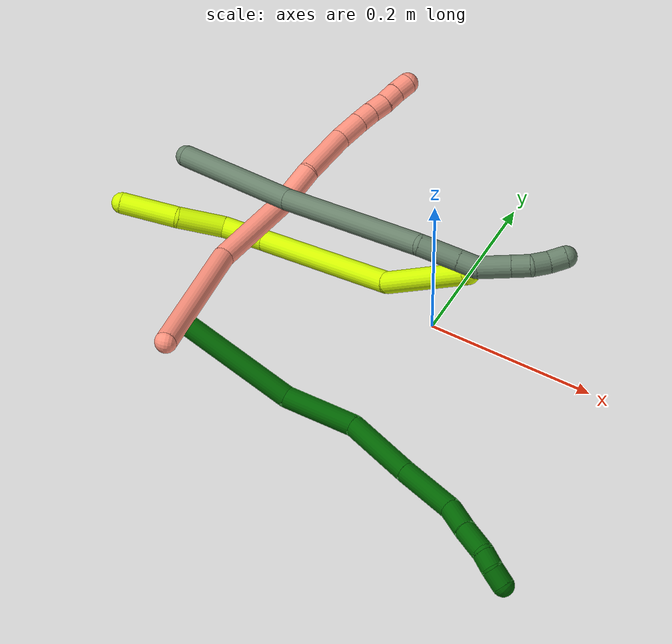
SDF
<sdf version="1.7">
 <world name="default">
  <model name="6">
   <static>0</static>
   <link name="6">
    <collision name="collision-cylinder-e_1_1_4">
     <pose>0.0078 -0.01296 0.06814 0.187953 0.111979 0.010565</pose>
     <geometry><cylinder><radius>0.0125</radius><length>0.139598</length></cylinder></geometry>
     <surface>
      <friction><ode><mu>1.16</mu><mu2>1.16</mu2><slip1>0</slip1><slip2>0</slip2></ode></friction>
      <contact><ode><kp>1e+06</kp><kd>1</kd><max_vel>0</max_vel><min_depth>0.001</min_depth></ode></contact>
     </surface>
    </collision>
    <visual name="visual-cylinder-e_1_1_4">
     <pose>0.0078 -0.01296 0.06814 0.187953 0.111979 0.010565</pose>
     <geometry><cylinder><radius>0.0125</radius><length>0.139598</length></cylinder></geometry>
     <material><ambient>0 0.392157 0.003922 1</ambient></material>
    </visual>
    <collision name="collision-cylinder-e_2_4_5">
     <pose>0.027641 -0.043288 0.17346 0.437014 0.285429 0.063792</pose>
     <geometry><cylinder><radius>0.0125</radius><length>0.085531</length></cylinder></geometry>
     <surface>
      <friction><ode><mu>1.16</mu><mu2>1.16</mu2><slip1>0</slip1><slip2>0</slip2></ode></friction>
      <contact><ode><kp>1e+06</kp><kd>1</kd><max_vel>0</max_vel><min_depth>0.001</min_depth></ode></contact>
     </surface>
    </collision>
    <visual name="visual-cylinder-e_2_4_5">
     <pose>0.027641 -0.043288 0.17346 0.437014 0.285429 0.063792</pose>
     <geometry><cylinder><radius>0.0125</radius><length>0.085531</length></cylinder></geometry>
     <material><ambient>0 0.392157 0.003922 1</ambient></material>
    </visual>
    <collision name="collision-cylinder-e_3_5_6">
     <pose>0.062736 -0.066532 0.247714 0.157191 0.550753 0.0445</pose>
     <geometry><cylinder><radius>0.0125</radius><length>0.088104</length></cylinder></geometry>
     <surface>
      <friction><ode><mu>1.16</mu><mu2>1.16</mu2><slip1>0</slip1><slip2>0</slip2></ode></friction>
      <contact><ode><kp>1e+06</kp><kd>1</kd><max_vel>0</max_vel><min_depth>0.001</min_depth></ode></contact>
     </surface>
    </collision>
    <visual name="visual-cylinder-e_3_5_6">
     <pose>0.062736 -0.066532 0.247714 0.157191 0.550753 0.0445</pose>
     <geometry><cylinder><radius>0.0125</radius><length>0.088104</length></cylinder></geometry>
     <material><ambient>0 0.392157 0.003922 1</ambient></material>
    </visual>
    <collision name="collision-cylinder-e_4_6_7">
     <pose>0.105326 -0.078592 0.314625 0.204374 0.570126 0.060082</pose>
     <geometry><cylinder><radius>0.0125</radius><length>0.07239</length></cylinder></geometry>
     <surface>
      <friction><ode><mu>1.16</mu><mu2>1.16</mu2><slip1>0</slip1><slip2>0</slip2></ode></friction>
      <contact><ode><kp>1e+06</kp><kd>1</kd><max_vel>0</max_vel><min_depth>0.001</min_depth></ode></contact>
     </surface>
    </collision>
    <visual name="visual-cylinder-e_4_6_7">
     <pose>0.105326 -0.078592 0.314625 0.204374 0.570126 0.060082</pose>
     <geometry><cylinder><radius>0.0125</radius><length>0.07239</length></cylinder></geometry>
     <material><ambient>0 0.392157 0.003922 1</ambient></material>
    </visual>
    <collision name="collision-cylinder-e_5_7_8">
     <pose>0.137677 -0.084081 0.357441 -0.053559 0.77831 -0.021967</pose>
     <geometry><cylinder><radius>0.0125</radius><length>0.036508</length></cylinder></geometry>
     <surface>
      <friction><ode><mu>1.16</mu><mu2>1.16</mu2><slip1>0</slip1><slip2>0</slip2></ode></friction>
      <contact><ode><kp>1e+06</kp><kd>1</kd><max_vel>0</max_vel><min_depth>0.001</min_depth></ode></contact>
     </surface>
    </collision>
    <visual name="visual-cylinder-e_5_7_8">
     <pose>0.137677 -0.084081 0.357441 -0.053559 0.77831 -0.021967</pose>
     <geometry><cylinder><radius>0.0125</radius><length>0.036508</length></cylinder></geometry>
     <material><ambient>0 0.392157 0.003922 1</ambient></material>
    </visual>
    <collision name="collision-cylinder-e_6_8_9">
     <pose>0.161973 -0.083451 0.384445 0.004694 0.685999 0.001676</pose>
     <geometry><cylinder><radius>0.0125</radius><length>0.036248</length></cylinder></geometry>
     <surface>
      <friction><ode><mu>1.16</mu><mu2>1.16</mu2><slip1>0</slip1><slip2>0</slip2></ode></friction>
      <contact><ode><kp>1e+06</kp><kd>1</kd><max_vel>0</max_vel><min_depth>0.001</min_depth></ode></contact>
     </surface>
    </collision>
    <visual name="visual-cylinder-e_6_8_9">
     <pose>0.161973 -0.083451 0.384445 0.004694 0.685999 0.001676</pose>
     <geometry><cylinder><radius>0.0125</radius><length>0.036248</length></cylinder></geometry>
     <material><ambient>0 0.392157 0.003922 1</ambient></material>
    </visual>
    <collision name="collision-cylinder-e_7_9_10">
     <pose>0.176751 -0.081425 0.407676 -0.223326 0.335989 -0.038028</pose>
     <geometry><cylinder><radius>0.0125</radius><length>0.020001</length></cylinder></geometry>
     <surface>
      <friction><ode><mu>1.16</mu><mu2>1.16</mu2><slip1>0</slip1><slip2>0</slip2></ode></friction>
      <contact><ode><kp>1e+06</kp><kd>1</kd><max_vel>0</max_vel><min_depth>0.001</min_depth></ode></contact>
     </surface>
    </collision>
    <visual name="visual-cylinder-e_7_9_10">
     <pose>0.176751 -0.081425 0.407676 -0.223326 0.335989 -0.038028</pose>
     <geometry><cylinder><radius>0.0125</radius><length>0.020001</length></cylinder></geometry>
     <material><ambient>0 0.392157 0.003922 1</ambient></material>
    </visual>
    <collision name="collision-cylinder-e_8_10_2">
     <pose>0.180658 -0.077241 0.42747 -0.19519 0.056471 -0.00553</pose>
     <geometry><cylinder><radius>0.0125</radius><length>0.02162</length></cylinder></geometry>
     <surface>
      <friction><ode><mu>1.16</mu><mu2>1.16</mu2><slip1>0</slip1><slip2>0</slip2></ode></friction>
      <contact><ode><kp>1e+06</kp><kd>1</kd><max_vel>0</max_vel><min_depth>0.001</min_depth></ode></contact>
     </surface>
    </collision>
    <visual name="visual-cylinder-e_8_10_2">
     <pose>0.180658 -0.077241 0.42747 -0.19519 0.056471 -0.00553</pose>
     <geometry><cylinder><radius>0.0125</radius><length>0.02162</length></cylinder></geometry>
     <material><ambient>0 0.392157 0.003922 1</ambient></material>
    </visual>
    <collision name="collision-sphere-2">
     <pose>0.181268 -0.075148 0.438058 0 -0 0</pose>
     <geometry><sphere><radius>0.0125</radius></sphere></geometry>
     <surface>
      <friction><ode><mu>1.16</mu><mu2>1.16</mu2><slip1>0</slip1><slip2>0</slip2></ode></friction>
      <contact><ode><kp>1e+06</kp><kd>1</kd><max_vel>0</max_vel><min_depth>0.001</min_depth></ode></contact>
     </surface>
    </collision>
    <visual name="visual-sphere-2">
     <pose>0.181268 -0.075148 0.438058 0 -0 0</pose>
     <geometry><sphere><radius>0.0125</radius></sphere></geometry>
     <material><ambient>0 0.392157 0.003922 1</ambient></material>
    </visual>
    <collision name="collision-sphere-10">
     <pose>0.180048 -0.079334 0.416882 0 -0 0</pose>
     <geometry><sphere><radius>0.0125</radius></sphere></geometry>
     <surface>
      <friction><ode><mu>1.16</mu><mu2>1.16</mu2><slip1>0</slip1><slip2>0</slip2></ode></friction>
      <contact><ode><kp>1e+06</kp><kd>1</kd><max_vel>0</max_vel><min_depth>0.001</min_depth></ode></contact>
     </surface>
    </collision>
    <visual name="visual-sphere-10">
     <pose>0.180048 -0.079334 0.416882 0 -0 0</pose>
     <geometry><sphere><radius>0.0125</radius></sphere></geometry>
     <material><ambient>0 0.392157 0.003922 1</ambient></material>
    </visual>
    <collision name="collision-sphere-9">
     <pose>0.173454 -0.083516 0.398469 0 -0 0</pose>
     <geometry><sphere><radius>0.0125</radius></sphere></geometry>
     <surface>
      <friction><ode><mu>1.16</mu><mu2>1.16</mu2><slip1>0</slip1><slip2>0</slip2></ode></friction>
      <contact><ode><kp>1e+06</kp><kd>1</kd><max_vel>0</max_vel><min_depth>0.001</min_depth></ode></contact>
     </surface>
    </collision>
    <visual name="visual-sphere-9">
     <pose>0.173454 -0.083516 0.398469 0 -0 0</pose>
     <geometry><sphere><radius>0.0125</radius></sphere></geometry>
     <material><ambient>0 0.392157 0.003922 1</ambient></material>
    </visual>
    <collision name="collision-sphere-4">
     <pose>0.015599 -0.02592 0.136281 0 -0 0</pose>
     <geometry><sphere><radius>0.0125</radius></sphere></geometry>
     <surface>
      <friction><ode><mu>1.16</mu><mu2>1.16</mu2><slip1>0</slip1><slip2>0</slip2></ode></friction>
      <contact><ode><kp>1e+06</kp><kd>1</kd><max_vel>0</max_vel><min_depth>0.001</min_depth></ode></contact>
     </surface>
    </collision>
    <visual name="visual-sphere-4">
     <pose>0.015599 -0.02592 0.136281 0 -0 0</pose>
     <geometry><sphere><radius>0.0125</radius></sphere></geometry>
     <material><ambient>0 0.392157 0.003922 1</ambient></material>
    </visual>
    <collision name="collision-sphere-1">
     <geometry><sphere><radius>0.0125</radius></sphere></geometry>
     <surface>
      <friction><ode><mu>1.16</mu><mu2>1.16</mu2><slip1>0</slip1><slip2>0</slip2></ode></friction>
      <contact><ode><kp>1e+06</kp><kd>1</kd><max_vel>0</max_vel><min_depth>0.001</min_depth></ode></contact>
     </surface>
    </collision>
    <visual name="visual-sphere-1">
     <geometry><sphere><radius>0.0125</radius></sphere></geometry>
     <material><ambient>0 0.392157 0.003922 1</ambient></material>
    </visual>
    <collision name="collision-sphere-8">
     <pose>0.150493 -0.083385 0.370421 0 -0 0</pose>
     <geometry><sphere><radius>0.0125</radius></sphere></geometry>
     <surface>
      <friction><ode><mu>1.16</mu><mu2>1.16</mu2><slip1>0</slip1><slip2>0</slip2></ode></friction>
      <contact><ode><kp>1e+06</kp><kd>1</kd><max_vel>0</max_vel><min_depth>0.001</min_depth></ode></contact>
     </surface>
    </collision>
    <visual name="visual-sphere-8">
     <pose>0.150493 -0.083385 0.370421 0 -0 0</pose>
     <geometry><sphere><radius>0.0125</radius></sphere></geometry>
     <material><ambient>0 0.392157 0.003922 1</ambient></material>
    </visual>
    <collision name="collision-sphere-5">
     <pose>0.039682 -0.060656 0.210638 0 -0 0</pose>
     <geometry><sphere><radius>0.0125</radius></sphere></geometry>
     <surface>
      <friction><ode><mu>1.16</mu><mu2>1.16</mu2><slip1>0</slip1><slip2>0</slip2></ode></friction>
      <contact><ode><kp>1e+06</kp><kd>1</kd><max_vel>0</max_vel><min_depth>0.001</min_depth></ode></contact>
     </surface>
    </collision>
    <visual name="visual-sphere-5">
     <pose>0.039682 -0.060656 0.210638 0 -0 0</pose>
     <geometry><sphere><radius>0.0125</radius></sphere></geometry>
     <material><ambient>0 0.392157 0.003922 1</ambient></material>
    </visual>
    <collision name="collision-sphere-6">
     <pose>0.08579 -0.072408 0.284789 0 -0 0</pose>
     <geometry><sphere><radius>0.0125</radius></sphere></geometry>
     <surface>
      <friction><ode><mu>1.16</mu><mu2>1.16</mu2><slip1>0</slip1><slip2>0</slip2></ode></friction>
      <contact><ode><kp>1e+06</kp><kd>1</kd><max_vel>0</max_vel><min_depth>0.001</min_depth></ode></contact>
     </surface>
    </collision>
    <visual name="visual-sphere-6">
     <pose>0.08579 -0.072408 0.284789 0 -0 0</pose>
     <geometry><sphere><radius>0.0125</radius></sphere></geometry>
     <material><ambient>0 0.392157 0.003922 1</ambient></material>
    </visual>
    <collision name="collision-sphere-7">
     <pose>0.124861 -0.084776 0.344461 0 -0 0</pose>
     <geometry><sphere><radius>0.0125</radius></sphere></geometry>
     <surface>
      <friction><ode><mu>1.16</mu><mu2>1.16</mu2><slip1>0</slip1><slip2>0</slip2></ode></friction>
      <contact><ode><kp>1e+06</kp><kd>1</kd><max_vel>0</max_vel><min_depth>0.001</min_depth></ode></contact>
     </surface>
    </collision>
    <visual name="visual-sphere-7">
     <pose>0.124861 -0.084776 0.344461 0 -0 0</pose>
     <geometry><sphere><radius>0.0125</radius></sphere></geometry>
     <material><ambient>0 0.392157 0.003922 1</ambient></material>
    </visual>
    <inertial>
     <pose>0.069887 -0.052911 0.226658 0 -0 0</pose>
     <mass>0.5</mass>
     <inertia><ixx>0.000399</ixx><ixy>0</ixy><ixz>0</ixz><iyy>0.00039</iyy><iyz>0</iyz><izz>1.3e-05</izz></inertia>
    </inertial>
   </link>
   <pose>-0.220424 -0.169494 0.050625 -2.28943 -0.776976 -1.16418</pose>
  </model>
  <model name="15">
   <static>0</static>
   <link name="15">
    <collision name="collision-cylinder-e_1_1_4">
     <pose>0.02935 0.003131 -0.017455 -2.96409 1.02729 -2.82871</pose>
     <geometry><cylinder><radius>0.0125</radius><length>0.068583</length></cylinder></geometry>
     <surface>
      <friction><ode><mu>1.16</mu><mu2>1.16</mu2><slip1>0</slip1><slip2>0</slip2></ode></friction>
      <contact><ode><kp>1e+06</kp><kd>1</kd><max_vel>0</max_vel><min_depth>0.001</min_depth></ode></contact>
     </surface>
    </collision>
    <visual name="visual-cylinder-e_1_1_4">
     <pose>0.02935 0.003131 -0.017455 -2.96409 1.02729 -2.82871</pose>
     <geometry><cylinder><radius>0.0125</radius><length>0.068583</length></cylinder></geometry>
     <material><ambient>0.835294 1 0 1</ambient></material>
    </visual>
    <collision name="collision-cylinder-e_2_4_5">
     <pose>0.076014 0.00831 -0.056264 -3.04602 0.679036 -2.87243</pose>
     <geometry><cylinder><radius>0.0125</radius><length>0.055135</length></cylinder></geometry>
     <surface>
      <friction><ode><mu>1.16</mu><mu2>1.16</mu2><slip1>0</slip1><slip2>0</slip2></ode></friction>
      <contact><ode><kp>1e+06</kp><kd>1</kd><max_vel>0</max_vel><min_depth>0.001</min_depth></ode></contact>
     </surface>
    </collision>
    <visual name="visual-cylinder-e_2_4_5">
     <pose>0.076014 0.00831 -0.056264 -3.04602 0.679036 -2.87243</pose>
     <geometry><cylinder><radius>0.0125</radius><length>0.055135</length></cylinder></geometry>
     <material><ambient>0.835294 1 0 1</ambient></material>
    </visual>
    <collision name="collision-cylinder-e_3_5_6">
     <pose>0.118149 0.011607 -0.088318 -3.02521 1.16136 -2.96448</pose>
     <geometry><cylinder><radius>0.0125</radius><length>0.054116</length></cylinder></geometry>
     <surface>
      <friction><ode><mu>1.16</mu><mu2>1.16</mu2><slip1>0</slip1><slip2>0</slip2></ode></friction>
      <contact><ode><kp>1e+06</kp><kd>1</kd><max_vel>0</max_vel><min_depth>0.001</min_depth></ode></contact>
     </surface>
    </collision>
    <visual name="visual-cylinder-e_3_5_6">
     <pose>0.118149 0.011607 -0.088318 -3.02521 1.16136 -2.96448</pose>
     <geometry><cylinder><radius>0.0125</radius><length>0.054116</length></cylinder></geometry>
     <material><ambient>0.835294 1 0 1</ambient></material>
    </visual>
    <collision name="collision-cylinder-e_4_6_7">
     <pose>0.241477 0.024168 -0.099537 -1.61676 1.45637 -1.50215</pose>
     <geometry><cylinder><radius>0.0125</radius><length>0.19831</length></cylinder></geometry>
     <surface>
      <friction><ode><mu>1.16</mu><mu2>1.16</mu2><slip1>0</slip1><slip2>0</slip2></ode></friction>
      <contact><ode><kp>1e+06</kp><kd>1</kd><max_vel>0</max_vel><min_depth>0.001</min_depth></ode></contact>
     </surface>
    </collision>
    <visual name="visual-cylinder-e_4_6_7">
     <pose>0.241477 0.024168 -0.099537 -1.61676 1.45637 -1.50215</pose>
     <geometry><cylinder><radius>0.0125</radius><length>0.19831</length></cylinder></geometry>
     <material><ambient>0.835294 1 0 1</ambient></material>
    </visual>
    <collision name="collision-cylinder-e_5_7_2">
     <pose>0.396037 0.061746 -0.098309 -1.50436 1.1317 -1.0724</pose>
     <geometry><cylinder><radius>0.0125</radius><length>0.123856</length></cylinder></geometry>
     <surface>
      <friction><ode><mu>1.16</mu><mu2>1.16</mu2><slip1>0</slip1><slip2>0</slip2></ode></friction>
      <contact><ode><kp>1e+06</kp><kd>1</kd><max_vel>0</max_vel><min_depth>0.001</min_depth></ode></contact>
     </surface>
    </collision>
    <visual name="visual-cylinder-e_5_7_2">
     <pose>0.396037 0.061746 -0.098309 -1.50436 1.1317 -1.0724</pose>
     <geometry><cylinder><radius>0.0125</radius><length>0.123856</length></cylinder></geometry>
     <material><ambient>0.835294 1 0 1</ambient></material>
    </visual>
    <collision name="collision-sphere-2">
     <pose>0.45209 0.088015 -0.096561 0 -0 0</pose>
     <geometry><sphere><radius>0.0125</radius></sphere></geometry>
     <surface>
      <friction><ode><mu>1.16</mu><mu2>1.16</mu2><slip1>0</slip1><slip2>0</slip2></ode></friction>
      <contact><ode><kp>1e+06</kp><kd>1</kd><max_vel>0</max_vel><min_depth>0.001</min_depth></ode></contact>
     </surface>
    </collision>
    <visual name="visual-sphere-2">
     <pose>0.45209 0.088015 -0.096561 0 -0 0</pose>
     <geometry><sphere><radius>0.0125</radius></sphere></geometry>
     <material><ambient>0.835294 1 0 1</ambient></material>
    </visual>
    <collision name="collision-sphere-7">
     <pose>0.339983 0.035477 -0.100057 0 -0 0</pose>
     <geometry><sphere><radius>0.0125</radius></sphere></geometry>
     <surface>
      <friction><ode><mu>1.16</mu><mu2>1.16</mu2><slip1>0</slip1><slip2>0</slip2></ode></friction>
      <contact><ode><kp>1e+06</kp><kd>1</kd><max_vel>0</max_vel><min_depth>0.001</min_depth></ode></contact>
     </surface>
    </collision>
    <visual name="visual-sphere-7">
     <pose>0.339983 0.035477 -0.100057 0 -0 0</pose>
     <geometry><sphere><radius>0.0125</radius></sphere></geometry>
     <material><ambient>0.835294 1 0 1</ambient></material>
    </visual>
    <collision name="collision-sphere-6">
     <pose>0.142971 0.012858 -0.099016 0 -0 0</pose>
     <geometry><sphere><radius>0.0125</radius></sphere></geometry>
     <surface>
      <friction><ode><mu>1.16</mu><mu2>1.16</mu2><slip1>0</slip1><slip2>0</slip2></ode></friction>
      <contact><ode><kp>1e+06</kp><kd>1</kd><max_vel>0</max_vel><min_depth>0.001</min_depth></ode></contact>
     </surface>
    </collision>
    <visual name="visual-sphere-6">
     <pose>0.142971 0.012858 -0.099016 0 -0 0</pose>
     <geometry><sphere><radius>0.0125</radius></sphere></geometry>
     <material><ambient>0.835294 1 0 1</ambient></material>
    </visual>
    <collision name="collision-sphere-5">
     <pose>0.093328 0.010357 -0.077619 0 -0 0</pose>
     <geometry><sphere><radius>0.0125</radius></sphere></geometry>
     <surface>
      <friction><ode><mu>1.16</mu><mu2>1.16</mu2><slip1>0</slip1><slip2>0</slip2></ode></friction>
      <contact><ode><kp>1e+06</kp><kd>1</kd><max_vel>0</max_vel><min_depth>0.001</min_depth></ode></contact>
     </surface>
    </collision>
    <visual name="visual-sphere-5">
     <pose>0.093328 0.010357 -0.077619 0 -0 0</pose>
     <geometry><sphere><radius>0.0125</radius></sphere></geometry>
     <material><ambient>0.835294 1 0 1</ambient></material>
    </visual>
    <collision name="collision-sphere-1">
     <geometry><sphere><radius>0.0125</radius></sphere></geometry>
     <surface>
      <friction><ode><mu>1.16</mu><mu2>1.16</mu2><slip1>0</slip1><slip2>0</slip2></ode></friction>
      <contact><ode><kp>1e+06</kp><kd>1</kd><max_vel>0</max_vel><min_depth>0.001</min_depth></ode></contact>
     </surface>
    </collision>
    <visual name="visual-sphere-1">
     <geometry><sphere><radius>0.0125</radius></sphere></geometry>
     <material><ambient>0.835294 1 0 1</ambient></material>
    </visual>
    <collision name="collision-sphere-4">
     <pose>0.0587 0.006262 -0.03491 0 -0 0</pose>
     <geometry><sphere><radius>0.0125</radius></sphere></geometry>
     <surface>
      <friction><ode><mu>1.16</mu><mu2>1.16</mu2><slip1>0</slip1><slip2>0</slip2></ode></friction>
      <contact><ode><kp>1e+06</kp><kd>1</kd><max_vel>0</max_vel><min_depth>0.001</min_depth></ode></contact>
     </surface>
    </collision>
    <visual name="visual-sphere-4">
     <pose>0.0587 0.006262 -0.03491 0 -0 0</pose>
     <geometry><sphere><radius>0.0125</radius></sphere></geometry>
     <material><ambient>0.835294 1 0 1</ambient></material>
    </visual>
    <inertial>
     <pose>0.219073 0.027483 -0.081988 0 -0 0</pose>
     <mass>0.5</mass>
     <inertia>
      <ixx>-0.000104</ixx>
      <ixy>0</ixy>
      <ixz>0</ixz>
      <iyy>0.000706</iyy>
      <iyz>0</iyz>
      <izz>-0.001007</izz>
     </inertia>
    </inertial>
   </link>
   <pose>-0.38852 -0.037551 0.033571 0.911993 -0.273115 -0.293612</pose>
  </model>
  <model name="16">
   <static>0</static>
   <link name="16">
    <collision name="collision-cylinder-e_1_1_4">
     <pose>-0.002195 0.081395 0.014216 -1.39788 -0.026555 0.022319</pose>
     <geometry><cylinder><radius>0.0125</radius><length>0.165312</length></cylinder></geometry>
     <surface>
      <friction><ode><mu>1.16</mu><mu2>1.16</mu2><slip1>0</slip1><slip2>0</slip2></ode></friction>
      <contact><ode><kp>1e+06</kp><kd>1</kd><max_vel>0</max_vel><min_depth>0.001</min_depth></ode></contact>
     </surface>
    </collision>
    <visual name="visual-cylinder-e_1_1_4">
     <pose>-0.002195 0.081395 0.014216 -1.39788 -0.026555 0.022319</pose>
     <geometry><cylinder><radius>0.0125</radius><length>0.165312</length></cylinder></geometry>
     <material><ambient>1 0.576471 0.494118 1</ambient></material>
    </visual>
    <collision name="collision-cylinder-e_2_4_5">
     <pose>-0.014115 0.209904 0.051826 -1.10994 -0.182818 0.113535</pose>
     <geometry><cylinder><radius>0.0125</radius><length>0.106987</length></cylinder></geometry>
     <surface>
      <friction><ode><mu>1.16</mu><mu2>1.16</mu2><slip1>0</slip1><slip2>0</slip2></ode></friction>
      <contact><ode><kp>1e+06</kp><kd>1</kd><max_vel>0</max_vel><min_depth>0.001</min_depth></ode></contact>
     </surface>
    </collision>
    <visual name="visual-cylinder-e_2_4_5">
     <pose>-0.014115 0.209904 0.051826 -1.10994 -0.182818 0.113535</pose>
     <geometry><cylinder><radius>0.0125</radius><length>0.106987</length></cylinder></geometry>
     <material><ambient>1 0.576471 0.494118 1</ambient></material>
    </visual>
    <collision name="collision-cylinder-e_3_5_6">
     <pose>-0.033954 0.277657 0.084989 -1.12868 -0.416943 0.266236</pose>
     <geometry><cylinder><radius>0.0125</radius><length>0.049949</length></cylinder></geometry>
     <surface>
      <friction><ode><mu>1.16</mu><mu2>1.16</mu2><slip1>0</slip1><slip2>0</slip2></ode></friction>
      <contact><ode><kp>1e+06</kp><kd>1</kd><max_vel>0</max_vel><min_depth>0.001</min_depth></ode></contact>
     </surface>
    </collision>
    <visual name="visual-cylinder-e_3_5_6">
     <pose>-0.033954 0.277657 0.084989 -1.12868 -0.416943 0.266236</pose>
     <geometry><cylinder><radius>0.0125</radius><length>0.049949</length></cylinder></geometry>
     <material><ambient>1 0.576471 0.494118 1</ambient></material>
    </visual>
    <collision name="collision-cylinder-e_4_6_7">
     <pose>-0.050288 0.327401 0.107122 -1.16913 -0.194244 0.128761</pose>
     <geometry><cylinder><radius>0.0125</radius><length>0.064456</length></cylinder></geometry>
     <surface>
      <friction><ode><mu>1.16</mu><mu2>1.16</mu2><slip1>0</slip1><slip2>0</slip2></ode></friction>
      <contact><ode><kp>1e+06</kp><kd>1</kd><max_vel>0</max_vel><min_depth>0.001</min_depth></ode></contact>
     </surface>
    </collision>
    <visual name="visual-cylinder-e_4_6_7">
     <pose>-0.050288 0.327401 0.107122 -1.16913 -0.194244 0.128761</pose>
     <geometry><cylinder><radius>0.0125</radius><length>0.064456</length></cylinder></geometry>
     <material><ambient>1 0.576471 0.494118 1</ambient></material>
    </visual>
    <collision name="collision-cylinder-e_5_7_8">
     <pose>-0.061008 0.369655 0.127524 -1.02201 -0.284051 0.159998</pose>
     <geometry><cylinder><radius>0.0125</radius><length>0.032109</length></cylinder></geometry>
     <surface>
      <friction><ode><mu>1.16</mu><mu2>1.16</mu2><slip1>0</slip1><slip2>0</slip2></ode></friction>
      <contact><ode><kp>1e+06</kp><kd>1</kd><max_vel>0</max_vel><min_depth>0.001</min_depth></ode></contact>
     </surface>
    </collision>
    <visual name="visual-cylinder-e_5_7_8">
     <pose>-0.061008 0.369655 0.127524 -1.02201 -0.284051 0.159998</pose>
     <geometry><cylinder><radius>0.0125</radius><length>0.032109</length></cylinder></geometry>
     <material><ambient>1 0.576471 0.494118 1</ambient></material>
    </visual>
    <collision name="collision-cylinder-e_6_8_9">
     <pose>-0.068442 0.390866 0.14099 -0.978368 -0.293271 0.156926</pose>
     <geometry><cylinder><radius>0.0125</radius><length>0.020306</length></cylinder></geometry>
     <surface>
      <friction><ode><mu>1.16</mu><mu2>1.16</mu2><slip1>0</slip1><slip2>0</slip2></ode></friction>
      <contact><ode><kp>1e+06</kp><kd>1</kd><max_vel>0</max_vel><min_depth>0.001</min_depth></ode></contact>
     </surface>
    </collision>
    <visual name="visual-cylinder-e_6_8_9">
     <pose>-0.068442 0.390866 0.14099 -0.978368 -0.293271 0.156926</pose>
     <geometry><cylinder><radius>0.0125</radius><length>0.020306</length></cylinder></geometry>
     <material><ambient>1 0.576471 0.494118 1</ambient></material>
    </visual>
    <collision name="collision-cylinder-e_7_9_10">
     <pose>-0.074028 0.406847 0.15247 -0.918193 -0.259884 0.129016</pose>
     <geometry><cylinder><radius>0.0125</radius><length>0.020626</length></cylinder></geometry>
     <surface>
      <friction><ode><mu>1.16</mu><mu2>1.16</mu2><slip1>0</slip1><slip2>0</slip2></ode></friction>
      <contact><ode><kp>1e+06</kp><kd>1</kd><max_vel>0</max_vel><min_depth>0.001</min_depth></ode></contact>
     </surface>
    </collision>
    <visual name="visual-cylinder-e_7_9_10">
     <pose>-0.074028 0.406847 0.15247 -0.918193 -0.259884 0.129016</pose>
     <geometry><cylinder><radius>0.0125</radius><length>0.020626</length></cylinder></geometry>
     <material><ambient>1 0.576471 0.494118 1</ambient></material>
    </visual>
    <collision name="collision-cylinder-e_8_10_11">
     <pose>-0.079869 0.422949 0.163379 -1.03514 -0.323606 0.185334</pose>
     <geometry><cylinder><radius>0.0125</radius><length>0.020074</length></cylinder></geometry>
     <surface>
      <friction><ode><mu>1.16</mu><mu2>1.16</mu2><slip1>0</slip1><slip2>0</slip2></ode></friction>
      <contact><ode><kp>1e+06</kp><kd>1</kd><max_vel>0</max_vel><min_depth>0.001</min_depth></ode></contact>
     </surface>
    </collision>
    <visual name="visual-cylinder-e_8_10_11">
     <pose>-0.079869 0.422949 0.163379 -1.03514 -0.323606 0.185334</pose>
     <geometry><cylinder><radius>0.0125</radius><length>0.020074</length></cylinder></geometry>
     <material><ambient>1 0.576471 0.494118 1</ambient></material>
    </visual>
    <collision name="collision-cylinder-e_9_11_2">
     <pose>-0.085953 0.439056 0.173775 -0.960751 -0.290634 0.152227</pose>
     <geometry><cylinder><radius>0.0125</radius><length>0.020181</length></cylinder></geometry>
     <surface>
      <friction><ode><mu>1.16</mu><mu2>1.16</mu2><slip1>0</slip1><slip2>0</slip2></ode></friction>
      <contact><ode><kp>1e+06</kp><kd>1</kd><max_vel>0</max_vel><min_depth>0.001</min_depth></ode></contact>
     </surface>
    </collision>
    <visual name="visual-cylinder-e_9_11_2">
     <pose>-0.085953 0.439056 0.173775 -0.960751 -0.290634 0.152227</pose>
     <geometry><cylinder><radius>0.0125</radius><length>0.020181</length></cylinder></geometry>
     <material><ambient>1 0.576471 0.494118 1</ambient></material>
    </visual>
    <collision name="collision-sphere-2">
     <pose>-0.088844 0.44698 0.179313 0 -0 0</pose>
     <geometry><sphere><radius>0.0125</radius></sphere></geometry>
     <surface>
      <friction><ode><mu>1.16</mu><mu2>1.16</mu2><slip1>0</slip1><slip2>0</slip2></ode></friction>
      <contact><ode><kp>1e+06</kp><kd>1</kd><max_vel>0</max_vel><min_depth>0.001</min_depth></ode></contact>
     </surface>
    </collision>
    <visual name="visual-sphere-2">
     <pose>-0.088844 0.44698 0.179313 0 -0 0</pose>
     <geometry><sphere><radius>0.0125</radius></sphere></geometry>
     <material><ambient>1 0.576471 0.494118 1</ambient></material>
    </visual>
    <collision name="collision-sphere-11">
     <pose>-0.083061 0.431133 0.168236 0 -0 0</pose>
     <geometry><sphere><radius>0.0125</radius></sphere></geometry>
     <surface>
      <friction><ode><mu>1.16</mu><mu2>1.16</mu2><slip1>0</slip1><slip2>0</slip2></ode></friction>
      <contact><ode><kp>1e+06</kp><kd>1</kd><max_vel>0</max_vel><min_depth>0.001</min_depth></ode></contact>
     </surface>
    </collision>
    <visual name="visual-sphere-11">
     <pose>-0.083061 0.431133 0.168236 0 -0 0</pose>
     <geometry><sphere><radius>0.0125</radius></sphere></geometry>
     <material><ambient>1 0.576471 0.494118 1</ambient></material>
    </visual>
    <collision name="collision-sphere-10">
     <pose>-0.076678 0.414766 0.158522 0 -0 0</pose>
     <geometry><sphere><radius>0.0125</radius></sphere></geometry>
     <surface>
      <friction><ode><mu>1.16</mu><mu2>1.16</mu2><slip1>0</slip1><slip2>0</slip2></ode></friction>
      <contact><ode><kp>1e+06</kp><kd>1</kd><max_vel>0</max_vel><min_depth>0.001</min_depth></ode></contact>
     </surface>
    </collision>
    <visual name="visual-sphere-10">
     <pose>-0.076678 0.414766 0.158522 0 -0 0</pose>
     <geometry><sphere><radius>0.0125</radius></sphere></geometry>
     <material><ambient>1 0.576471 0.494118 1</ambient></material>
    </visual>
    <collision name="collision-sphere-9">
     <pose>-0.071377 0.398929 0.146417 0 -0 0</pose>
     <geometry><sphere><radius>0.0125</radius></sphere></geometry>
     <surface>
      <friction><ode><mu>1.16</mu><mu2>1.16</mu2><slip1>0</slip1><slip2>0</slip2></ode></friction>
      <contact><ode><kp>1e+06</kp><kd>1</kd><max_vel>0</max_vel><min_depth>0.001</min_depth></ode></contact>
     </surface>
    </collision>
    <visual name="visual-sphere-9">
     <pose>-0.071377 0.398929 0.146417 0 -0 0</pose>
     <geometry><sphere><radius>0.0125</radius></sphere></geometry>
     <material><ambient>1 0.576471 0.494118 1</ambient></material>
    </visual>
    <collision name="collision-sphere-4">
     <pose>-0.004389 0.16279 0.028433 0 -0 0</pose>
     <geometry><sphere><radius>0.0125</radius></sphere></geometry>
     <surface>
      <friction><ode><mu>1.16</mu><mu2>1.16</mu2><slip1>0</slip1><slip2>0</slip2></ode></friction>
      <contact><ode><kp>1e+06</kp><kd>1</kd><max_vel>0</max_vel><min_depth>0.001</min_depth></ode></contact>
     </surface>
    </collision>
    <visual name="visual-sphere-4">
     <pose>-0.004389 0.16279 0.028433 0 -0 0</pose>
     <geometry><sphere><radius>0.0125</radius></sphere></geometry>
     <material><ambient>1 0.576471 0.494118 1</ambient></material>
    </visual>
    <collision name="collision-sphere-1">
     <geometry><sphere><radius>0.0125</radius></sphere></geometry>
     <surface>
      <friction><ode><mu>1.16</mu><mu2>1.16</mu2><slip1>0</slip1><slip2>0</slip2></ode></friction>
      <contact><ode><kp>1e+06</kp><kd>1</kd><max_vel>0</max_vel><min_depth>0.001</min_depth></ode></contact>
     </surface>
    </collision>
    <visual name="visual-sphere-1">
     <geometry><sphere><radius>0.0125</radius></sphere></geometry>
     <material><ambient>1 0.576471 0.494118 1</ambient></material>
    </visual>
    <collision name="collision-sphere-8">
     <pose>-0.065507 0.382803 0.135563 0 -0 0</pose>
     <geometry><sphere><radius>0.0125</radius></sphere></geometry>
     <surface>
      <friction><ode><mu>1.16</mu><mu2>1.16</mu2><slip1>0</slip1><slip2>0</slip2></ode></friction>
      <contact><ode><kp>1e+06</kp><kd>1</kd><max_vel>0</max_vel><min_depth>0.001</min_depth></ode></contact>
     </surface>
    </collision>
    <visual name="visual-sphere-8">
     <pose>-0.065507 0.382803 0.135563 0 -0 0</pose>
     <geometry><sphere><radius>0.0125</radius></sphere></geometry>
     <material><ambient>1 0.576471 0.494118 1</ambient></material>
    </visual>
    <collision name="collision-sphere-5">
     <pose>-0.02384 0.257018 0.075219 0 -0 0</pose>
     <geometry><sphere><radius>0.0125</radius></sphere></geometry>
     <surface>
      <friction><ode><mu>1.16</mu><mu2>1.16</mu2><slip1>0</slip1><slip2>0</slip2></ode></friction>
      <contact><ode><kp>1e+06</kp><kd>1</kd><max_vel>0</max_vel><min_depth>0.001</min_depth></ode></contact>
     </surface>
    </collision>
    <visual name="visual-sphere-5">
     <pose>-0.02384 0.257018 0.075219 0 -0 0</pose>
     <geometry><sphere><radius>0.0125</radius></sphere></geometry>
     <material><ambient>1 0.576471 0.494118 1</ambient></material>
    </visual>
    <collision name="collision-sphere-6">
     <pose>-0.044067 0.298296 0.094759 0 -0 0</pose>
     <geometry><sphere><radius>0.0125</radius></sphere></geometry>
     <surface>
      <friction><ode><mu>1.16</mu><mu2>1.16</mu2><slip1>0</slip1><slip2>0</slip2></ode></friction>
      <contact><ode><kp>1e+06</kp><kd>1</kd><max_vel>0</max_vel><min_depth>0.001</min_depth></ode></contact>
     </surface>
    </collision>
    <visual name="visual-sphere-6">
     <pose>-0.044067 0.298296 0.094759 0 -0 0</pose>
     <geometry><sphere><radius>0.0125</radius></sphere></geometry>
     <material><ambient>1 0.576471 0.494118 1</ambient></material>
    </visual>
    <collision name="collision-sphere-7">
     <pose>-0.056509 0.356507 0.119485 0 -0 0</pose>
     <geometry><sphere><radius>0.0125</radius></sphere></geometry>
     <surface>
      <friction><ode><mu>1.16</mu><mu2>1.16</mu2><slip1>0</slip1><slip2>0</slip2></ode></friction>
      <contact><ode><kp>1e+06</kp><kd>1</kd><max_vel>0</max_vel><min_depth>0.001</min_depth></ode></contact>
     </surface>
    </collision>
    <visual name="visual-sphere-7">
     <pose>-0.056509 0.356507 0.119485 0 -0 0</pose>
     <geometry><sphere><radius>0.0125</radius></sphere></geometry>
     <material><ambient>1 0.576471 0.494118 1</ambient></material>
    </visual>
    <inertial>
     <pose>-0.030047 0.232866 0.071867 0 -0 0</pose>
     <mass>0.5</mass>
     <inertia>
      <ixx>0.000552</ixx>
      <ixy>0</ixy>
      <ixz>0</ixz>
      <iyy>0.0002</iyy>
      <iyz>0</iyz>
      <izz>-0.000455</izz>
     </inertia>
    </inertial>
   </link>
   <pose>-0.173733 -0.279981 0.162594 -1.86742 1.32726 -1.53899</pose>
  </model>
  <model name="17">
   <static>0</static>
   <link name="17">
    <collision name="collision-cylinder-e_1_1_4">
     <pose>0.049093 -0.000823 0.055285 0.01489 0.726096 0.005656</pose>
     <geometry><cylinder><radius>0.0125</radius><length>0.147882</length></cylinder></geometry>
     <surface>
      <friction><ode><mu>1.16</mu><mu2>1.16</mu2><slip1>0</slip1><slip2>0</slip2></ode></friction>
      <contact><ode><kp>1e+06</kp><kd>1</kd><max_vel>0</max_vel><min_depth>0.001</min_depth></ode></contact>
     </surface>
    </collision>
    <visual name="visual-cylinder-e_1_1_4">
     <pose>0.049093 -0.000823 0.055285 0.01489 0.726096 0.005656</pose>
     <geometry><cylinder><radius>0.0125</radius><length>0.147882</length></cylinder></geometry>
     <material><ambient>0.415686 0.509804 0.423529 1</ambient></material>
    </visual>
    <collision name="collision-cylinder-e_2_4_5">
     <pose>0.153566 0.000591 0.185748 -0.029756 0.634686 -0.009774</pose>
     <geometry><cylinder><radius>0.0125</radius><length>0.186801</length></cylinder></geometry>
     <surface>
      <friction><ode><mu>1.16</mu><mu2>1.16</mu2><slip1>0</slip1><slip2>0</slip2></ode></friction>
      <contact><ode><kp>1e+06</kp><kd>1</kd><max_vel>0</max_vel><min_depth>0.001</min_depth></ode></contact>
     </surface>
    </collision>
    <visual name="visual-cylinder-e_2_4_5">
     <pose>0.153566 0.000591 0.185748 -0.029756 0.634686 -0.009774</pose>
     <geometry><cylinder><radius>0.0125</radius><length>0.186801</length></cylinder></geometry>
     <material><ambient>0.415686 0.509804 0.423529 1</ambient></material>
    </visual>
    <collision name="collision-cylinder-e_3_5_6">
     <pose>0.229235 0.005862 0.271312 -0.284112 1.0809 -0.171216</pose>
     <geometry><cylinder><radius>0.0125</radius><length>0.045988</length></cylinder></geometry>
     <surface>
      <friction><ode><mu>1.16</mu><mu2>1.16</mu2><slip1>0</slip1><slip2>0</slip2></ode></friction>
      <contact><ode><kp>1e+06</kp><kd>1</kd><max_vel>0</max_vel><min_depth>0.001</min_depth></ode></contact>
     </surface>
    </collision>
    <visual name="visual-cylinder-e_3_5_6">
     <pose>0.229235 0.005862 0.271312 -0.284112 1.0809 -0.171216</pose>
     <geometry><cylinder><radius>0.0125</radius><length>0.045988</length></cylinder></geometry>
     <material><ambient>0.415686 0.509804 0.423529 1</ambient></material>
    </visual>
    <collision name="collision-cylinder-e_4_6_7">
     <pose>0.258718 0.010118 0.286459 -0.251535 1.07975 -0.151245</pose>
     <geometry><cylinder><radius>0.0125</radius><length>0.02085</length></cylinder></geometry>
     <surface>
      <friction><ode><mu>1.16</mu><mu2>1.16</mu2><slip1>0</slip1><slip2>0</slip2></ode></friction>
      <contact><ode><kp>1e+06</kp><kd>1</kd><max_vel>0</max_vel><min_depth>0.001</min_depth></ode></contact>
     </surface>
    </collision>
    <visual name="visual-cylinder-e_4_6_7">
     <pose>0.258718 0.010118 0.286459 -0.251535 1.07975 -0.151245</pose>
     <geometry><cylinder><radius>0.0125</radius><length>0.02085</length></cylinder></geometry>
     <material><ambient>0.415686 0.509804 0.423529 1</ambient></material>
    </visual>
    <collision name="collision-cylinder-e_5_7_8">
     <pose>0.281704 0.020958 0.299392 -0.866423 0.829786 -0.401939</pose>
     <geometry><cylinder><radius>0.0125</radius><length>0.037389</length></cylinder></geometry>
     <surface>
      <friction><ode><mu>1.16</mu><mu2>1.16</mu2><slip1>0</slip1><slip2>0</slip2></ode></friction>
      <contact><ode><kp>1e+06</kp><kd>1</kd><max_vel>0</max_vel><min_depth>0.001</min_depth></ode></contact>
     </surface>
    </collision>
    <visual name="visual-cylinder-e_5_7_8">
     <pose>0.281704 0.020958 0.299392 -0.866423 0.829786 -0.401939</pose>
     <geometry><cylinder><radius>0.0125</radius><length>0.037389</length></cylinder></geometry>
     <material><ambient>0.415686 0.509804 0.423529 1</ambient></material>
    </visual>
    <collision name="collision-cylinder-e_6_8_9">
     <pose>0.303092 0.035883 0.312374 -0.83464 0.814606 -0.377992</pose>
     <geometry><cylinder><radius>0.0125</radius><length>0.020882</length></cylinder></geometry>
     <surface>
      <friction><ode><mu>1.16</mu><mu2>1.16</mu2><slip1>0</slip1><slip2>0</slip2></ode></friction>
      <contact><ode><kp>1e+06</kp><kd>1</kd><max_vel>0</max_vel><min_depth>0.001</min_depth></ode></contact>
     </surface>
    </collision>
    <visual name="visual-cylinder-e_6_8_9">
     <pose>0.303092 0.035883 0.312374 -0.83464 0.814606 -0.377992</pose>
     <geometry><cylinder><radius>0.0125</radius><length>0.020882</length></cylinder></geometry>
     <material><ambient>0.415686 0.509804 0.423529 1</ambient></material>
    </visual>
    <collision name="collision-cylinder-e_7_9_10">
     <pose>0.317893 0.048065 0.318387 -1.39748 0.801467 -0.683897</pose>
     <geometry><cylinder><radius>0.0125</radius><length>0.020061</length></cylinder></geometry>
     <surface>
      <friction><ode><mu>1.16</mu><mu2>1.16</mu2><slip1>0</slip1><slip2>0</slip2></ode></friction>
      <contact><ode><kp>1e+06</kp><kd>1</kd><max_vel>0</max_vel><min_depth>0.001</min_depth></ode></contact>
     </surface>
    </collision>
    <visual name="visual-cylinder-e_7_9_10">
     <pose>0.317893 0.048065 0.318387 -1.39748 0.801467 -0.683897</pose>
     <geometry><cylinder><radius>0.0125</radius><length>0.020061</length></cylinder></geometry>
     <material><ambient>0.415686 0.509804 0.423529 1</ambient></material>
    </visual>
    <collision name="collision-cylinder-e_8_10_2">
     <pose>0.331164 0.062414 0.322558 -1.19297 0.646145 -0.447058</pose>
     <geometry><cylinder><radius>0.0125</radius><length>0.020147</length></cylinder></geometry>
     <surface>
      <friction><ode><mu>1.16</mu><mu2>1.16</mu2><slip1>0</slip1><slip2>0</slip2></ode></friction>
      <contact><ode><kp>1e+06</kp><kd>1</kd><max_vel>0</max_vel><min_depth>0.001</min_depth></ode></contact>
     </surface>
    </collision>
    <visual name="visual-cylinder-e_8_10_2">
     <pose>0.331164 0.062414 0.322558 -1.19297 0.646145 -0.447058</pose>
     <geometry><cylinder><radius>0.0125</radius><length>0.020147</length></cylinder></geometry>
     <material><ambient>0.415686 0.509804 0.423529 1</ambient></material>
    </visual>
    <collision name="collision-sphere-2">
     <pose>0.337229 0.069889 0.325525 0 -0 0</pose>
     <geometry><sphere><radius>0.0125</radius></sphere></geometry>
     <surface>
      <friction><ode><mu>1.16</mu><mu2>1.16</mu2><slip1>0</slip1><slip2>0</slip2></ode></friction>
      <contact><ode><kp>1e+06</kp><kd>1</kd><max_vel>0</max_vel><min_depth>0.001</min_depth></ode></contact>
     </surface>
    </collision>
    <visual name="visual-sphere-2">
     <pose>0.337229 0.069889 0.325525 0 -0 0</pose>
     <geometry><sphere><radius>0.0125</radius></sphere></geometry>
     <material><ambient>0.415686 0.509804 0.423529 1</ambient></material>
    </visual>
    <collision name="collision-sphere-10">
     <pose>0.325098 0.054938 0.319591 0 -0 0</pose>
     <geometry><sphere><radius>0.0125</radius></sphere></geometry>
     <surface>
      <friction><ode><mu>1.16</mu><mu2>1.16</mu2><slip1>0</slip1><slip2>0</slip2></ode></friction>
      <contact><ode><kp>1e+06</kp><kd>1</kd><max_vel>0</max_vel><min_depth>0.001</min_depth></ode></contact>
     </surface>
    </collision>
    <visual name="visual-sphere-10">
     <pose>0.325098 0.054938 0.319591 0 -0 0</pose>
     <geometry><sphere><radius>0.0125</radius></sphere></geometry>
     <material><ambient>0.415686 0.509804 0.423529 1</ambient></material>
    </visual>
    <collision name="collision-sphere-9">
     <pose>0.310687 0.041192 0.317184 0 -0 0</pose>
     <geometry><sphere><radius>0.0125</radius></sphere></geometry>
     <surface>
      <friction><ode><mu>1.16</mu><mu2>1.16</mu2><slip1>0</slip1><slip2>0</slip2></ode></friction>
      <contact><ode><kp>1e+06</kp><kd>1</kd><max_vel>0</max_vel><min_depth>0.001</min_depth></ode></contact>
     </surface>
    </collision>
    <visual name="visual-sphere-9">
     <pose>0.310687 0.041192 0.317184 0 -0 0</pose>
     <geometry><sphere><radius>0.0125</radius></sphere></geometry>
     <material><ambient>0.415686 0.509804 0.423529 1</ambient></material>
    </visual>
    <collision name="collision-sphere-4">
     <pose>0.098187 -0.001646 0.11057 0 -0 0</pose>
     <geometry><sphere><radius>0.0125</radius></sphere></geometry>
     <surface>
      <friction><ode><mu>1.16</mu><mu2>1.16</mu2><slip1>0</slip1><slip2>0</slip2></ode></friction>
      <contact><ode><kp>1e+06</kp><kd>1</kd><max_vel>0</max_vel><min_depth>0.001</min_depth></ode></contact>
     </surface>
    </collision>
    <visual name="visual-sphere-4">
     <pose>0.098187 -0.001646 0.11057 0 -0 0</pose>
     <geometry><sphere><radius>0.0125</radius></sphere></geometry>
     <material><ambient>0.415686 0.509804 0.423529 1</ambient></material>
    </visual>
    <collision name="collision-sphere-1">
     <geometry><sphere><radius>0.0125</radius></sphere></geometry>
     <surface>
      <friction><ode><mu>1.16</mu><mu2>1.16</mu2><slip1>0</slip1><slip2>0</slip2></ode></friction>
      <contact><ode><kp>1e+06</kp><kd>1</kd><max_vel>0</max_vel><min_depth>0.001</min_depth></ode></contact>
     </surface>
    </collision>
    <visual name="visual-sphere-1">
     <geometry><sphere><radius>0.0125</radius></sphere></geometry>
     <material><ambient>0.415686 0.509804 0.423529 1</ambient></material>
    </visual>
    <collision name="collision-sphere-8">
     <pose>0.295497 0.030574 0.307564 0 -0 0</pose>
     <geometry><sphere><radius>0.0125</radius></sphere></geometry>
     <surface>
      <friction><ode><mu>1.16</mu><mu2>1.16</mu2><slip1>0</slip1><slip2>0</slip2></ode></friction>
      <contact><ode><kp>1e+06</kp><kd>1</kd><max_vel>0</max_vel><min_depth>0.001</min_depth></ode></contact>
     </surface>
    </collision>
    <visual name="visual-sphere-8">
     <pose>0.295497 0.030574 0.307564 0 -0 0</pose>
     <geometry><sphere><radius>0.0125</radius></sphere></geometry>
     <material><ambient>0.415686 0.509804 0.423529 1</ambient></material>
    </visual>
    <collision name="collision-sphere-5">
     <pose>0.208946 0.002829 0.260926 0 -0 0</pose>
     <geometry><sphere><radius>0.0125</radius></sphere></geometry>
     <surface>
      <friction><ode><mu>1.16</mu><mu2>1.16</mu2><slip1>0</slip1><slip2>0</slip2></ode></friction>
      <contact><ode><kp>1e+06</kp><kd>1</kd><max_vel>0</max_vel><min_depth>0.001</min_depth></ode></contact>
     </surface>
    </collision>
    <visual name="visual-sphere-5">
     <pose>0.208946 0.002829 0.260926 0 -0 0</pose>
     <geometry><sphere><radius>0.0125</radius></sphere></geometry>
     <material><ambient>0.415686 0.509804 0.423529 1</ambient></material>
    </visual>
    <collision name="collision-sphere-6">
     <pose>0.249525 0.008894 0.281697 0 -0 0</pose>
     <geometry><sphere><radius>0.0125</radius></sphere></geometry>
     <surface>
      <friction><ode><mu>1.16</mu><mu2>1.16</mu2><slip1>0</slip1><slip2>0</slip2></ode></friction>
      <contact><ode><kp>1e+06</kp><kd>1</kd><max_vel>0</max_vel><min_depth>0.001</min_depth></ode></contact>
     </surface>
    </collision>
    <visual name="visual-sphere-6">
     <pose>0.249525 0.008894 0.281697 0 -0 0</pose>
     <geometry><sphere><radius>0.0125</radius></sphere></geometry>
     <material><ambient>0.415686 0.509804 0.423529 1</ambient></material>
    </visual>
    <collision name="collision-sphere-7">
     <pose>0.267911 0.011341 0.29122 0 -0 0</pose>
     <geometry><sphere><radius>0.0125</radius></sphere></geometry>
     <surface>
      <friction><ode><mu>1.16</mu><mu2>1.16</mu2><slip1>0</slip1><slip2>0</slip2></ode></friction>
      <contact><ode><kp>1e+06</kp><kd>1</kd><max_vel>0</max_vel><min_depth>0.001</min_depth></ode></contact>
     </surface>
    </collision>
    <visual name="visual-sphere-7">
     <pose>0.267911 0.011341 0.29122 0 -0 0</pose>
     <geometry><sphere><radius>0.0125</radius></sphere></geometry>
     <material><ambient>0.415686 0.509804 0.423529 1</ambient></material>
    </visual>
    <inertial>
     <pose>0.163588 0.008448 0.183852 0 -0 0</pose>
     <mass>0.5</mass>
     <inertia>
      <ixx>0.00068</ixx>
      <ixy>0</ixy>
      <ixz>0</ixz>
      <iyy>0.000843</iyy>
      <iyz>0</iyz>
      <izz>-0.000519</izz>
     </inertia>
    </inertial>
   </link>
   <pose>-0.314186 -0.009106 0.12561 0.459752 0.617619 0.222026</pose>
  </model>
 </world>
</sdf>
